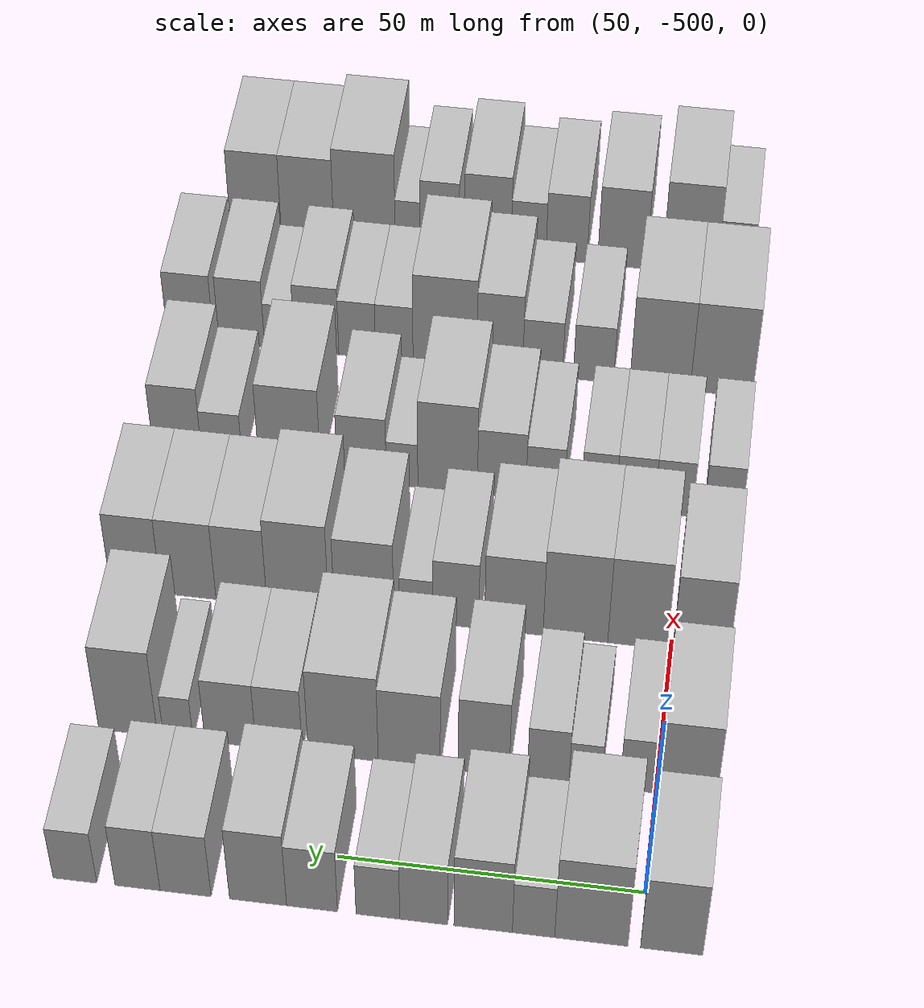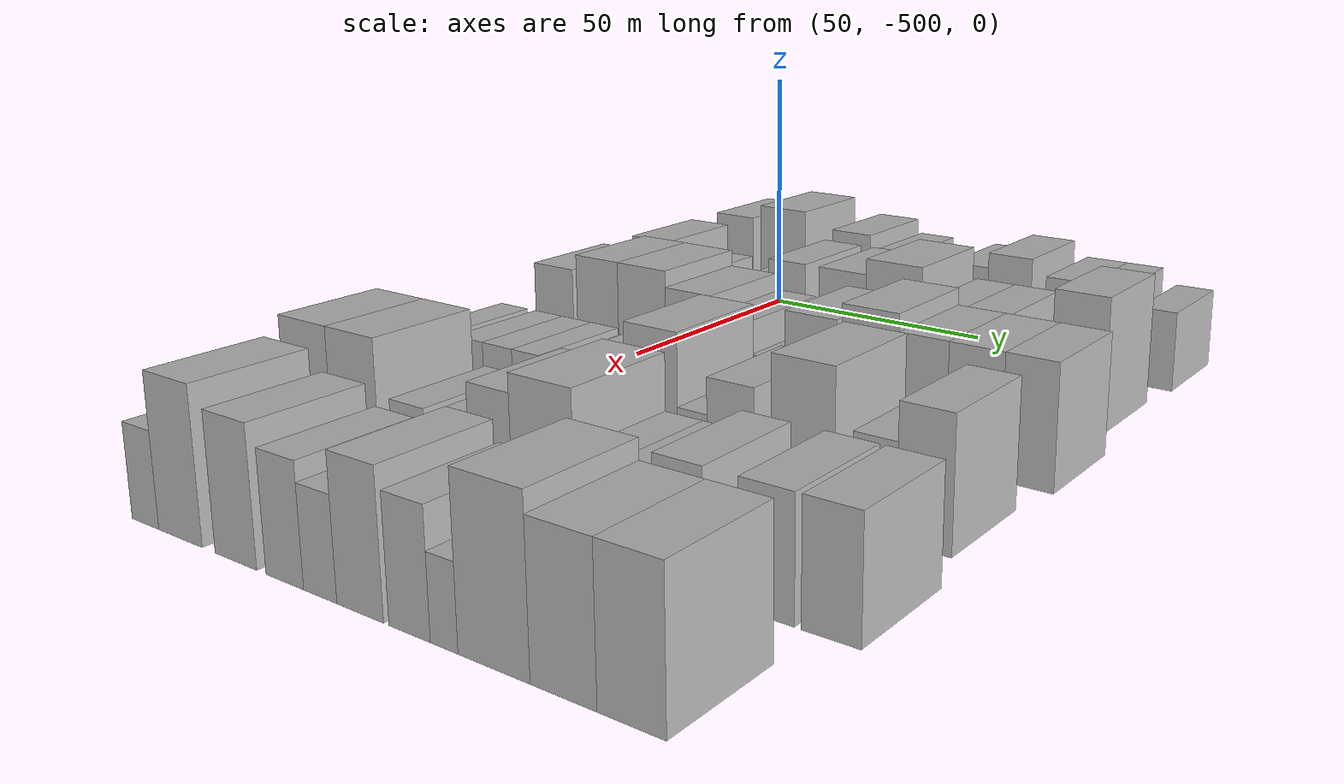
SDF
<sdf version="1.6">
 <world name="default">
  <model name="building_1">
   <static>1</static>
   <pose>50.0000 -505.0525 0 0.000000 0.000000 0.000000</pose>
   <link name="link">
    <pose>0 0 10.50 0 0 0</pose>
    <collision name="collision"><geometry><box><size>20.0000 9.8950 21.0000</size></box></geometry></collision>
    <visual name="visual">
     <cast_shadows>0</cast_shadows>
     <geometry><box><size>20.0000 9.8950 21.0000</size></box></geometry>
     <material>
      <script>
       <uri>model://HANNAS_wall/materials/scripts</uri>
       <uri>model://HANNAS_wall/materials/textures</uri>
       <name>vrc/HANNAS_wall</name>
      </script>
     </material>
    </visual>
   </link>
  </model>
  <model name="building_2">
   <static>1</static>
   <pose>50.0000 -492.2627 0 0.000000 0.000000 0.000000</pose>
   <link name="link">
    <pose>0 0 12.00 0 0 0</pose>
    <collision name="collision"><geometry><box><size>20.0000 11.6845 24.0000</size></box></geometry></collision>
    <visual name="visual">
     <cast_shadows>0</cast_shadows>
     <geometry><box><size>20.0000 11.6845 24.0000</size></box></geometry>
     <material>
      <script>
       <uri>model://HANNAS_wall/materials/scripts</uri>
       <uri>model://HANNAS_wall/materials/textures</uri>
       <name>vrc/HANNAS_wall</name>
      </script>
     </material>
    </visual>
   </link>
  </model>
  <model name="building_3">
   <static>1</static>
   <pose>50.0000 -483.0384 0 0.000000 0.000000 0.000000</pose>
   <link name="link">
    <pose>0 0 7.50 0 0 0</pose>
    <collision name="collision"><geometry><box><size>20.0000 6.7641 15.0000</size></box></geometry></collision>
    <visual name="visual">
     <cast_shadows>0</cast_shadows>
     <geometry><box><size>20.0000 6.7641 15.0000</size></box></geometry>
     <material>
      <script>
       <uri>model://HANNAS_wall/materials/scripts</uri>
       <uri>model://HANNAS_wall/materials/textures</uri>
       <name>vrc/HANNAS_wall</name>
      </script>
     </material>
    </visual>
   </link>
  </model>
  <model name="building_4">
   <static>1</static>
   <pose>50.0000 -474.9721 0 0.000000 0.000000 0.000000</pose>
   <link name="link">
    <pose>0 0 10.50 0 0 0</pose>
    <collision name="collision"><geometry><box><size>20.0000 9.3683 21.0000</size></box></geometry></collision>
    <visual name="visual">
     <cast_shadows>0</cast_shadows>
     <geometry><box><size>20.0000 9.3683 21.0000</size></box></geometry>
     <material>
      <script>
       <uri>model://HANNAS_wall/materials/scripts</uri>
       <uri>model://HANNAS_wall/materials/textures</uri>
       <name>vrc/HANNAS_wall</name>
      </script>
     </material>
    </visual>
   </link>
  </model>
  <model name="building_5">
   <static>1</static>
   <pose>50.0000 -465.4289 0 0.000000 0.000000 0.000000</pose>
   <link name="link">
    <pose>0 0 9.00 0 0 0</pose>
    <collision name="collision"><geometry><box><size>20.0000 7.7182 18.0000</size></box></geometry></collision>
    <visual name="visual">
     <cast_shadows>0</cast_shadows>
     <geometry><box><size>20.0000 7.7182 18.0000</size></box></geometry>
     <material>
      <script>
       <uri>model://HANNAS_wall/materials/scripts</uri>
       <uri>model://HANNAS_wall/materials/textures</uri>
       <name>vrc/HANNAS_wall</name>
      </script>
     </material>
    </visual>
   </link>
  </model>
  <model name="building_6">
   <static>1</static>
   <pose>50.0000 -458.0506 0 0.000000 0.000000 0.000000</pose>
   <link name="link">
    <pose>0 0 7.50 0 0 0</pose>
    <collision name="collision"><geometry><box><size>20.0000 7.0384 15.0000</size></box></geometry></collision>
    <visual name="visual">
     <cast_shadows>0</cast_shadows>
     <geometry><box><size>20.0000 7.0384 15.0000</size></box></geometry>
     <material>
      <script>
       <uri>model://HANNAS_wall/materials/scripts</uri>
       <uri>model://HANNAS_wall/materials/textures</uri>
       <name>vrc/HANNAS_wall</name>
      </script>
     </material>
    </visual>
   </link>
  </model>
  <model name="building_7">
   <static>1</static>
   <pose>50.0000 -447.4046 0 0.000000 0.000000 0.000000</pose>
   <link name="link">
    <pose>0 0 9.00 0 0 0</pose>
    <collision name="collision"><geometry><box><size>20.0000 8.2536 18.0000</size></box></geometry></collision>
    <visual name="visual">
     <cast_shadows>0</cast_shadows>
     <geometry><box><size>20.0000 8.2536 18.0000</size></box></geometry>
     <material>
      <script>
       <uri>model://HANNAS_wall/materials/scripts</uri>
       <uri>model://HANNAS_wall/materials/textures</uri>
       <name>vrc/HANNAS_wall</name>
      </script>
     </material>
    </visual>
   </link>
  </model>
  <model name="building_8">
   <static>1</static>
   <pose>50.0000 -438.6514 0 0.000000 0.000000 0.000000</pose>
   <link name="link">
    <pose>0 0 10.50 0 0 0</pose>
    <collision name="collision"><geometry><box><size>20.0000 9.2527 21.0000</size></box></geometry></collision>
    <visual name="visual">
     <cast_shadows>0</cast_shadows>
     <geometry><box><size>20.0000 9.2527 21.0000</size></box></geometry>
     <material>
      <script>
       <uri>model://HANNAS_wall/materials/scripts</uri>
       <uri>model://HANNAS_wall/materials/textures</uri>
       <name>vrc/HANNAS_wall</name>
      </script>
     </material>
    </visual>
   </link>
  </model>
  <model name="building_9">
   <static>1</static>
   <pose>50.0000 -426.8555 0 0.000000 0.000000 0.000000</pose>
   <link name="link">
    <pose>0 0 9.00 0 0 0</pose>
    <collision name="collision"><geometry><box><size>20.0000 8.3391 18.0000</size></box></geometry></collision>
    <visual name="visual">
     <cast_shadows>0</cast_shadows>
     <geometry><box><size>20.0000 8.3391 18.0000</size></box></geometry>
     <material>
      <script>
       <uri>model://HANNAS_wall/materials/scripts</uri>
       <uri>model://HANNAS_wall/materials/textures</uri>
       <name>vrc/HANNAS_wall</name>
      </script>
     </material>
    </visual>
   </link>
  </model>
  <model name="building_10">
   <static>1</static>
   <pose>50.0000 -419.0073 0 0.000000 0.000000 0.000000</pose>
   <link name="link">
    <pose>0 0 9.00 0 0 0</pose>
    <collision name="collision"><geometry><box><size>20.0000 7.3574 18.0000</size></box></geometry></collision>
    <visual name="visual">
     <cast_shadows>0</cast_shadows>
     <geometry><box><size>20.0000 7.3574 18.0000</size></box></geometry>
     <material>
      <script>
       <uri>model://HANNAS_wall/materials/scripts</uri>
       <uri>model://HANNAS_wall/materials/textures</uri>
       <name>vrc/HANNAS_wall</name>
      </script>
     </material>
    </visual>
   </link>
  </model>
  <model name="building_11">
   <static>1</static>
   <pose>50.0000 -408.7520 0 0.000000 0.000000 0.000000</pose>
   <link name="link">
    <pose>0 0 7.50 0 0 0</pose>
    <collision name="collision"><geometry><box><size>20.0000 7.1532 15.0000</size></box></geometry></collision>
    <visual name="visual">
     <cast_shadows>0</cast_shadows>
     <geometry><box><size>20.0000 7.1532 15.0000</size></box></geometry>
     <material>
      <script>
       <uri>model://HANNAS_wall/materials/scripts</uri>
       <uri>model://HANNAS_wall/materials/textures</uri>
       <name>vrc/HANNAS_wall</name>
      </script>
     </material>
    </visual>
   </link>
  </model>
  <model name="building_105">
   <static>1</static>
   <pose>79.0000 -505.1967 0 0.000000 0.000000 0.000000</pose>
   <link name="link">
    <pose>0 0 10.50 0 0 0</pose>
    <collision name="collision"><geometry><box><size>20.0000 9.6067 21.0000</size></box></geometry></collision>
    <visual name="visual">
     <cast_shadows>0</cast_shadows>
     <geometry><box><size>20.0000 9.6067 21.0000</size></box></geometry>
     <material>
      <script>
       <uri>model://HANNAS_wall/materials/scripts</uri>
       <uri>model://HANNAS_wall/materials/textures</uri>
       <name>vrc/HANNAS_wall</name>
      </script>
     </material>
    </visual>
   </link>
  </model>
  <model name="building_106">
   <static>1</static>
   <pose>79.0000 -497.1970 0 0.000000 0.000000 0.000000</pose>
   <link name="link">
    <pose>0 0 7.50 0 0 0</pose>
    <collision name="collision"><geometry><box><size>20.0000 6.3926 15.0000</size></box></geometry></collision>
    <visual name="visual">
     <cast_shadows>0</cast_shadows>
     <geometry><box><size>20.0000 6.3926 15.0000</size></box></geometry>
     <material>
      <script>
       <uri>model://HANNAS_wall/materials/scripts</uri>
       <uri>model://HANNAS_wall/materials/textures</uri>
       <name>vrc/HANNAS_wall</name>
      </script>
     </material>
    </visual>
   </link>
  </model>
  <model name="building_107">
   <static>1</static>
   <pose>79.0000 -488.2947 0 0.000000 0.000000 0.000000</pose>
   <link name="link">
    <pose>0 0 6.00 0 0 0</pose>
    <collision name="collision"><geometry><box><size>20.0000 5.4122 12.0000</size></box></geometry></collision>
    <visual name="visual">
     <cast_shadows>0</cast_shadows>
     <geometry><box><size>20.0000 5.4122 12.0000</size></box></geometry>
     <material>
      <script>
       <uri>model://HANNAS_wall/materials/scripts</uri>
       <uri>model://HANNAS_wall/materials/textures</uri>
       <name>vrc/HANNAS_wall</name>
      </script>
     </material>
    </visual>
   </link>
  </model>
  <model name="building_108">
   <static>1</static>
   <pose>79.0000 -482.1387 0 0.000000 0.000000 0.000000</pose>
   <link name="link">
    <pose>0 0 7.50 0 0 0</pose>
    <collision name="collision"><geometry><box><size>20.0000 6.8997 15.0000</size></box></geometry></collision>
    <visual name="visual">
     <cast_shadows>0</cast_shadows>
     <geometry><box><size>20.0000 6.8997 15.0000</size></box></geometry>
     <material>
      <script>
       <uri>model://HANNAS_wall/materials/scripts</uri>
       <uri>model://HANNAS_wall/materials/textures</uri>
       <name>vrc/HANNAS_wall</name>
      </script>
     </material>
    </visual>
   </link>
  </model>
  <model name="building_109">
   <static>1</static>
   <pose>79.0000 -471.4327 0 0.000000 0.000000 0.000000</pose>
   <link name="link">
    <pose>0 0 10.50 0 0 0</pose>
    <collision name="collision"><geometry><box><size>20.0000 8.5123 21.0000</size></box></geometry></collision>
    <visual name="visual">
     <cast_shadows>0</cast_shadows>
     <geometry><box><size>20.0000 8.5123 21.0000</size></box></geometry>
     <material>
      <script>
       <uri>model://HANNAS_wall/materials/scripts</uri>
       <uri>model://HANNAS_wall/materials/textures</uri>
       <name>vrc/HANNAS_wall</name>
      </script>
     </material>
    </visual>
   </link>
  </model>
  <model name="building_110">
   <static>1</static>
   <pose>79.0000 -458.9937 0 0.000000 0.000000 0.000000</pose>
   <link name="link">
    <pose>0 0 10.50 0 0 0</pose>
    <collision name="collision"><geometry><box><size>20.0000 10.3657 21.0000</size></box></geometry></collision>
    <visual name="visual">
     <cast_shadows>0</cast_shadows>
     <geometry><box><size>20.0000 10.3657 21.0000</size></box></geometry>
     <material>
      <script>
       <uri>model://HANNAS_wall/materials/scripts</uri>
       <uri>model://HANNAS_wall/materials/textures</uri>
       <name>vrc/HANNAS_wall</name>
      </script>
     </material>
    </visual>
   </link>
  </model>
  <model name="building_111">
   <static>1</static>
   <pose>79.0000 -447.9383 0 0.000000 0.000000 0.000000</pose>
   <link name="link">
    <pose>0 0 12.00 0 0 0</pose>
    <collision name="collision"><geometry><box><size>20.0000 11.7453 24.0000</size></box></geometry></collision>
    <visual name="visual">
     <cast_shadows>0</cast_shadows>
     <geometry><box><size>20.0000 11.7453 24.0000</size></box></geometry>
     <material>
      <script>
       <uri>model://HANNAS_wall/materials/scripts</uri>
       <uri>model://HANNAS_wall/materials/textures</uri>
       <name>vrc/HANNAS_wall</name>
      </script>
     </material>
    </visual>
   </link>
  </model>
  <model name="building_112">
   <static>1</static>
   <pose>79.0000 -437.1507 0 0.000000 0.000000 0.000000</pose>
   <link name="link">
    <pose>0 0 9.00 0 0 0</pose>
    <collision name="collision"><geometry><box><size>20.0000 7.8299 18.0000</size></box></geometry></collision>
    <visual name="visual">
     <cast_shadows>0</cast_shadows>
     <geometry><box><size>20.0000 7.8299 18.0000</size></box></geometry>
     <material>
      <script>
       <uri>model://HANNAS_wall/materials/scripts</uri>
       <uri>model://HANNAS_wall/materials/textures</uri>
       <name>vrc/HANNAS_wall</name>
      </script>
     </material>
    </visual>
   </link>
  </model>
  <model name="building_113">
   <static>1</static>
   <pose>79.0000 -428.9253 0 0.000000 0.000000 0.000000</pose>
   <link name="link">
    <pose>0 0 9.00 0 0 0</pose>
    <collision name="collision"><geometry><box><size>20.0000 8.6209 18.0000</size></box></geometry></collision>
    <visual name="visual">
     <cast_shadows>0</cast_shadows>
     <geometry><box><size>20.0000 8.6209 18.0000</size></box></geometry>
     <material>
      <script>
       <uri>model://HANNAS_wall/materials/scripts</uri>
       <uri>model://HANNAS_wall/materials/textures</uri>
       <name>vrc/HANNAS_wall</name>
      </script>
     </material>
    </visual>
   </link>
  </model>
  <model name="building_114">
   <static>1</static>
   <pose>79.0000 -420.0906 0 0.000000 0.000000 0.000000</pose>
   <link name="link">
    <pose>0 0 6.00 0 0 0</pose>
    <collision name="collision"><geometry><box><size>20.0000 5.0485 12.0000</size></box></geometry></collision>
    <visual name="visual">
     <cast_shadows>0</cast_shadows>
     <geometry><box><size>20.0000 5.0485 12.0000</size></box></geometry>
     <material>
      <script>
       <uri>model://HANNAS_wall/materials/scripts</uri>
       <uri>model://HANNAS_wall/materials/textures</uri>
       <name>vrc/HANNAS_wall</name>
      </script>
     </material>
    </visual>
   </link>
  </model>
  <model name="building_115">
   <static>1</static>
   <pose>79.0000 -411.5672 0 0.000000 0.000000 0.000000</pose>
   <link name="link">
    <pose>0 0 12.00 0 0 0</pose>
    <collision name="collision"><geometry><box><size>20.0000 9.9984 24.0000</size></box></geometry></collision>
    <visual name="visual">
     <cast_shadows>0</cast_shadows>
     <geometry><box><size>20.0000 9.9984 24.0000</size></box></geometry>
     <material>
      <script>
       <uri>model://HANNAS_wall/materials/scripts</uri>
       <uri>model://HANNAS_wall/materials/textures</uri>
       <name>vrc/HANNAS_wall</name>
      </script>
     </material>
    </visual>
   </link>
  </model>
  <model name="building_223">
   <static>1</static>
   <pose>108.0000 -505.1646 0 0.000000 0.000000 0.000000</pose>
   <link name="link">
    <pose>0 0 10.50 0 0 0</pose>
    <collision name="collision"><geometry><box><size>20.0000 9.6707 21.0000</size></box></geometry></collision>
    <visual name="visual">
     <cast_shadows>0</cast_shadows>
     <geometry><box><size>20.0000 9.6707 21.0000</size></box></geometry>
     <material>
      <script>
       <uri>model://HANNAS_wall/materials/scripts</uri>
       <uri>model://HANNAS_wall/materials/textures</uri>
       <name>vrc/HANNAS_wall</name>
      </script>
     </material>
    </visual>
   </link>
  </model>
  <model name="building_224">
   <static>1</static>
   <pose>108.0000 -494.2528 0 0.000000 0.000000 0.000000</pose>
   <link name="link">
    <pose>0 0 12.00 0 0 0</pose>
    <collision name="collision"><geometry><box><size>20.0000 10.1529 24.0000</size></box></geometry></collision>
    <visual name="visual">
     <cast_shadows>0</cast_shadows>
     <geometry><box><size>20.0000 10.1529 24.0000</size></box></geometry>
     <material>
      <script>
       <uri>model://HANNAS_wall/materials/scripts</uri>
       <uri>model://HANNAS_wall/materials/textures</uri>
       <name>vrc/HANNAS_wall</name>
      </script>
     </material>
    </visual>
   </link>
  </model>
  <model name="building_225">
   <static>1</static>
   <pose>108.0000 -483.6098 0 0.000000 0.000000 0.000000</pose>
   <link name="link">
    <pose>0 0 12.00 0 0 0</pose>
    <collision name="collision"><geometry><box><size>20.0000 11.1330 24.0000</size></box></geometry></collision>
    <visual name="visual">
     <cast_shadows>0</cast_shadows>
     <geometry><box><size>20.0000 11.1330 24.0000</size></box></geometry>
     <material>
      <script>
       <uri>model://HANNAS_wall/materials/scripts</uri>
       <uri>model://HANNAS_wall/materials/textures</uri>
       <name>vrc/HANNAS_wall</name>
      </script>
     </material>
    </visual>
   </link>
  </model>
  <model name="building_226">
   <static>1</static>
   <pose>108.0000 -472.9923 0 0.000000 0.000000 0.000000</pose>
   <link name="link">
    <pose>0 0 10.50 0 0 0</pose>
    <collision name="collision"><geometry><box><size>20.0000 10.1021 21.0000</size></box></geometry></collision>
    <visual name="visual">
     <cast_shadows>0</cast_shadows>
     <geometry><box><size>20.0000 10.1021 21.0000</size></box></geometry>
     <material>
      <script>
       <uri>model://HANNAS_wall/materials/scripts</uri>
       <uri>model://HANNAS_wall/materials/textures</uri>
       <name>vrc/HANNAS_wall</name>
      </script>
     </material>
    </visual>
   </link>
  </model>
  <model name="building_227">
   <static>1</static>
   <pose>108.0000 -462.9695 0 0.000000 0.000000 0.000000</pose>
   <link name="link">
    <pose>0 0 9.00 0 0 0</pose>
    <collision name="collision"><geometry><box><size>20.0000 7.9435 18.0000</size></box></geometry></collision>
    <visual name="visual">
     <cast_shadows>0</cast_shadows>
     <geometry><box><size>20.0000 7.9435 18.0000</size></box></geometry>
     <material>
      <script>
       <uri>model://HANNAS_wall/materials/scripts</uri>
       <uri>model://HANNAS_wall/materials/textures</uri>
       <name>vrc/HANNAS_wall</name>
      </script>
     </material>
    </visual>
   </link>
  </model>
  <model name="building_228">
   <static>1</static>
   <pose>108.0000 -456.1054 0 0.000000 0.000000 0.000000</pose>
   <link name="link">
    <pose>0 0 6.00 0 0 0</pose>
    <collision name="collision"><geometry><box><size>20.0000 5.7846 12.0000</size></box></geometry></collision>
    <visual name="visual">
     <cast_shadows>0</cast_shadows>
     <geometry><box><size>20.0000 5.7846 12.0000</size></box></geometry>
     <material>
      <script>
       <uri>model://HANNAS_wall/materials/scripts</uri>
       <uri>model://HANNAS_wall/materials/textures</uri>
       <name>vrc/HANNAS_wall</name>
      </script>
     </material>
    </visual>
   </link>
  </model>
  <model name="building_229">
   <static>1</static>
   <pose>108.0000 -447.0440 0 0.000000 0.000000 0.000000</pose>
   <link name="link">
    <pose>0 0 10.50 0 0 0</pose>
    <collision name="collision"><geometry><box><size>20.0000 10.3381 21.0000</size></box></geometry></collision>
    <visual name="visual">
     <cast_shadows>0</cast_shadows>
     <geometry><box><size>20.0000 10.3381 21.0000</size></box></geometry>
     <material>
      <script>
       <uri>model://HANNAS_wall/materials/scripts</uri>
       <uri>model://HANNAS_wall/materials/textures</uri>
       <name>vrc/HANNAS_wall</name>
      </script>
     </material>
    </visual>
   </link>
  </model>
  <model name="building_230">
   <static>1</static>
   <pose>108.0000 -435.4775 0 0.000000 0.000000 0.000000</pose>
   <link name="link">
    <pose>0 0 12.00 0 0 0</pose>
    <collision name="collision"><geometry><box><size>20.0000 10.7949 24.0000</size></box></geometry></collision>
    <visual name="visual">
     <cast_shadows>0</cast_shadows>
     <geometry><box><size>20.0000 10.7949 24.0000</size></box></geometry>
     <material>
      <script>
       <uri>model://HANNAS_wall/materials/scripts</uri>
       <uri>model://HANNAS_wall/materials/textures</uri>
       <name>vrc/HANNAS_wall</name>
      </script>
     </material>
    </visual>
   </link>
  </model>
  <model name="building_231">
   <static>1</static>
   <pose>108.0000 -425.6089 0 0.000000 0.000000 0.000000</pose>
   <link name="link">
    <pose>0 0 10.50 0 0 0</pose>
    <collision name="collision"><geometry><box><size>20.0000 8.9423 21.0000</size></box></geometry></collision>
    <visual name="visual">
     <cast_shadows>0</cast_shadows>
     <geometry><box><size>20.0000 8.9423 21.0000</size></box></geometry>
     <material>
      <script>
       <uri>model://HANNAS_wall/materials/scripts</uri>
       <uri>model://HANNAS_wall/materials/textures</uri>
       <name>vrc/HANNAS_wall</name>
      </script>
     </material>
    </visual>
   </link>
  </model>
  <model name="building_232">
   <static>1</static>
   <pose>108.0000 -416.3095 0 0.000000 0.000000 0.000000</pose>
   <link name="link">
    <pose>0 0 10.50 0 0 0</pose>
    <collision name="collision"><geometry><box><size>20.0000 9.6566 21.0000</size></box></geometry></collision>
    <visual name="visual">
     <cast_shadows>0</cast_shadows>
     <geometry><box><size>20.0000 9.6566 21.0000</size></box></geometry>
     <material>
      <script>
       <uri>model://HANNAS_wall/materials/scripts</uri>
       <uri>model://HANNAS_wall/materials/textures</uri>
       <name>vrc/HANNAS_wall</name>
      </script>
     </material>
    </visual>
   </link>
  </model>
  <model name="building_233">
   <static>1</static>
   <pose>108.0000 -407.0207 0 0.000000 0.000000 0.000000</pose>
   <link name="link">
    <pose>0 0 10.50 0 0 0</pose>
    <collision name="collision"><geometry><box><size>20.0000 8.9209 21.0000</size></box></geometry></collision>
    <visual name="visual">
     <cast_shadows>0</cast_shadows>
     <geometry><box><size>20.0000 8.9209 21.0000</size></box></geometry>
     <material>
      <script>
       <uri>model://HANNAS_wall/materials/scripts</uri>
       <uri>model://HANNAS_wall/materials/textures</uri>
       <name>vrc/HANNAS_wall</name>
      </script>
     </material>
    </visual>
   </link>
  </model>
  <model name="building_344">
   <static>1</static>
   <pose>137.0000 -506.6699 0 0.000000 0.000000 0.000000</pose>
   <link name="link">
    <pose>0 0 7.50 0 0 0</pose>
    <collision name="collision"><geometry><box><size>20.0000 6.6601 15.0000</size></box></geometry></collision>
    <visual name="visual">
     <cast_shadows>0</cast_shadows>
     <geometry><box><size>20.0000 6.6601 15.0000</size></box></geometry>
     <material>
      <script>
       <uri>model://HANNAS_wall/materials/scripts</uri>
       <uri>model://HANNAS_wall/materials/textures</uri>
       <name>vrc/HANNAS_wall</name>
      </script>
     </material>
    </visual>
   </link>
  </model>
  <model name="building_345">
   <static>1</static>
   <pose>137.0000 -497.9796 0 0.000000 0.000000 0.000000</pose>
   <link name="link">
    <pose>0 0 7.50 0 0 0</pose>
    <collision name="collision"><geometry><box><size>20.0000 6.7205 15.0000</size></box></geometry></collision>
    <visual name="visual">
     <cast_shadows>0</cast_shadows>
     <geometry><box><size>20.0000 6.7205 15.0000</size></box></geometry>
     <material>
      <script>
       <uri>model://HANNAS_wall/materials/scripts</uri>
       <uri>model://HANNAS_wall/materials/textures</uri>
       <name>vrc/HANNAS_wall</name>
      </script>
     </material>
    </visual>
   </link>
  </model>
  <model name="building_346">
   <static>1</static>
   <pose>137.0000 -491.1611 0 0.000000 0.000000 0.000000</pose>
   <link name="link">
    <pose>0 0 7.50 0 0 0</pose>
    <collision name="collision"><geometry><box><size>20.0000 6.9165 15.0000</size></box></geometry></collision>
    <visual name="visual">
     <cast_shadows>0</cast_shadows>
     <geometry><box><size>20.0000 6.9165 15.0000</size></box></geometry>
     <material>
      <script>
       <uri>model://HANNAS_wall/materials/scripts</uri>
       <uri>model://HANNAS_wall/materials/textures</uri>
       <name>vrc/HANNAS_wall</name>
      </script>
     </material>
    </visual>
   </link>
  </model>
  <model name="building_347">
   <static>1</static>
   <pose>137.0000 -484.6311 0 0.000000 0.000000 0.000000</pose>
   <link name="link">
    <pose>0 0 7.50 0 0 0</pose>
    <collision name="collision"><geometry><box><size>20.0000 6.1436 15.0000</size></box></geometry></collision>
    <visual name="visual">
     <cast_shadows>0</cast_shadows>
     <geometry><box><size>20.0000 6.1436 15.0000</size></box></geometry>
     <material>
      <script>
       <uri>model://HANNAS_wall/materials/scripts</uri>
       <uri>model://HANNAS_wall/materials/textures</uri>
       <name>vrc/HANNAS_wall</name>
      </script>
     </material>
    </visual>
   </link>
  </model>
  <model name="building_348">
   <static>1</static>
   <pose>137.0000 -475.1274 0 0.000000 0.000000 0.000000</pose>
   <link name="link">
    <pose>0 0 7.50 0 0 0</pose>
    <collision name="collision"><geometry><box><size>20.0000 6.8638 15.0000</size></box></geometry></collision>
    <visual name="visual">
     <cast_shadows>0</cast_shadows>
     <geometry><box><size>20.0000 6.8638 15.0000</size></box></geometry>
     <material>
      <script>
       <uri>model://HANNAS_wall/materials/scripts</uri>
       <uri>model://HANNAS_wall/materials/textures</uri>
       <name>vrc/HANNAS_wall</name>
      </script>
     </material>
    </visual>
   </link>
  </model>
  <model name="building_349">
   <static>1</static>
   <pose>137.0000 -467.3618 0 0.000000 0.000000 0.000000</pose>
   <link name="link">
    <pose>0 0 9.00 0 0 0</pose>
    <collision name="collision"><geometry><box><size>20.0000 8.6674 18.0000</size></box></geometry></collision>
    <visual name="visual">
     <cast_shadows>0</cast_shadows>
     <geometry><box><size>20.0000 8.6674 18.0000</size></box></geometry>
     <material>
      <script>
       <uri>model://HANNAS_wall/materials/scripts</uri>
       <uri>model://HANNAS_wall/materials/textures</uri>
       <name>vrc/HANNAS_wall</name>
      </script>
     </material>
    </visual>
   </link>
  </model>
  <model name="building_350">
   <static>1</static>
   <pose>137.0000 -457.6876 0 0.000000 0.000000 0.000000</pose>
   <link name="link">
    <pose>0 0 12.00 0 0 0</pose>
    <collision name="collision"><geometry><box><size>20.0000 10.6808 24.0000</size></box></geometry></collision>
    <visual name="visual">
     <cast_shadows>0</cast_shadows>
     <geometry><box><size>20.0000 10.6808 24.0000</size></box></geometry>
     <material>
      <script>
       <uri>model://HANNAS_wall/materials/scripts</uri>
       <uri>model://HANNAS_wall/materials/textures</uri>
       <name>vrc/HANNAS_wall</name>
      </script>
     </material>
    </visual>
   </link>
  </model>
  <model name="building_351">
   <static>1</static>
   <pose>137.0000 -449.5104 0 0.000000 0.000000 0.000000</pose>
   <link name="link">
    <pose>0 0 6.00 0 0 0</pose>
    <collision name="collision"><geometry><box><size>20.0000 5.6736 12.0000</size></box></geometry></collision>
    <visual name="visual">
     <cast_shadows>0</cast_shadows>
     <geometry><box><size>20.0000 5.6736 12.0000</size></box></geometry>
     <material>
      <script>
       <uri>model://HANNAS_wall/materials/scripts</uri>
       <uri>model://HANNAS_wall/materials/textures</uri>
       <name>vrc/HANNAS_wall</name>
      </script>
     </material>
    </visual>
   </link>
  </model>
  <model name="building_352">
   <static>1</static>
   <pose>137.0000 -442.2562 0 0.000000 0.000000 0.000000</pose>
   <link name="link">
    <pose>0 0 9.00 0 0 0</pose>
    <collision name="collision"><geometry><box><size>20.0000 8.8347 18.0000</size></box></geometry></collision>
    <visual name="visual">
     <cast_shadows>0</cast_shadows>
     <geometry><box><size>20.0000 8.8347 18.0000</size></box></geometry>
     <material>
      <script>
       <uri>model://HANNAS_wall/materials/scripts</uri>
       <uri>model://HANNAS_wall/materials/textures</uri>
       <name>vrc/HANNAS_wall</name>
      </script>
     </material>
    </visual>
   </link>
  </model>
  <model name="building_353">
   <static>1</static>
   <pose>137.0000 -429.2670 0 0.000000 0.000000 0.000000</pose>
   <link name="link">
    <pose>0 0 12.00 0 0 0</pose>
    <collision name="collision"><geometry><box><size>20.0000 11.1438 24.0000</size></box></geometry></collision>
    <visual name="visual">
     <cast_shadows>0</cast_shadows>
     <geometry><box><size>20.0000 11.1438 24.0000</size></box></geometry>
     <material>
      <script>
       <uri>model://HANNAS_wall/materials/scripts</uri>
       <uri>model://HANNAS_wall/materials/textures</uri>
       <name>vrc/HANNAS_wall</name>
      </script>
     </material>
    </visual>
   </link>
  </model>
  <model name="building_354">
   <static>1</static>
   <pose>137.0000 -417.0237 0 0.000000 0.000000 0.000000</pose>
   <link name="link">
    <pose>0 0 7.50 0 0 0</pose>
    <collision name="collision"><geometry><box><size>20.0000 7.3427 15.0000</size></box></geometry></collision>
    <visual name="visual">
     <cast_shadows>0</cast_shadows>
     <geometry><box><size>20.0000 7.3427 15.0000</size></box></geometry>
     <material>
      <script>
       <uri>model://HANNAS_wall/materials/scripts</uri>
       <uri>model://HANNAS_wall/materials/textures</uri>
       <name>vrc/HANNAS_wall</name>
      </script>
     </material>
    </visual>
   </link>
  </model>
  <model name="building_355">
   <static>1</static>
   <pose>137.0000 -408.9553 0 0.000000 0.000000 0.000000</pose>
   <link name="link">
    <pose>0 0 10.50 0 0 0</pose>
    <collision name="collision"><geometry><box><size>20.0000 8.7940 21.0000</size></box></geometry></collision>
    <visual name="visual">
     <cast_shadows>0</cast_shadows>
     <geometry><box><size>20.0000 8.7940 21.0000</size></box></geometry>
     <material>
      <script>
       <uri>model://HANNAS_wall/materials/scripts</uri>
       <uri>model://HANNAS_wall/materials/textures</uri>
       <name>vrc/HANNAS_wall</name>
      </script>
     </material>
    </visual>
   </link>
  </model>
  <model name="building_462">
   <static>1</static>
   <pose>166.0000 -504.3137 0 0.000000 0.000000 0.000000</pose>
   <link name="link">
    <pose>0 0 12.00 0 0 0</pose>
    <collision name="collision"><geometry><box><size>20.0000 11.3727 24.0000</size></box></geometry></collision>
    <visual name="visual">
     <cast_shadows>0</cast_shadows>
     <geometry><box><size>20.0000 11.3727 24.0000</size></box></geometry>
     <material>
      <script>
       <uri>model://HANNAS_wall/materials/scripts</uri>
       <uri>model://HANNAS_wall/materials/textures</uri>
       <name>vrc/HANNAS_wall</name>
      </script>
     </material>
    </visual>
   </link>
  </model>
  <model name="building_463">
   <static>1</static>
   <pose>166.0000 -493.0781 0 0.000000 0.000000 0.000000</pose>
   <link name="link">
    <pose>0 0 12.00 0 0 0</pose>
    <collision name="collision"><geometry><box><size>20.0000 11.0985 24.0000</size></box></geometry></collision>
    <visual name="visual">
     <cast_shadows>0</cast_shadows>
     <geometry><box><size>20.0000 11.0985 24.0000</size></box></geometry>
     <material>
      <script>
       <uri>model://HANNAS_wall/materials/scripts</uri>
       <uri>model://HANNAS_wall/materials/textures</uri>
       <name>vrc/HANNAS_wall</name>
      </script>
     </material>
    </visual>
   </link>
  </model>
  <model name="building_464">
   <static>1</static>
   <pose>166.0000 -480.8154 0 0.000000 0.000000 0.000000</pose>
   <link name="link">
    <pose>0 0 7.50 0 0 0</pose>
    <collision name="collision"><geometry><box><size>20.0000 7.4268 15.0000</size></box></geometry></collision>
    <visual name="visual">
     <cast_shadows>0</cast_shadows>
     <geometry><box><size>20.0000 7.4268 15.0000</size></box></geometry>
     <material>
      <script>
       <uri>model://HANNAS_wall/materials/scripts</uri>
       <uri>model://HANNAS_wall/materials/textures</uri>
       <name>vrc/HANNAS_wall</name>
      </script>
     </material>
    </visual>
   </link>
  </model>
  <model name="building_465">
   <static>1</static>
   <pose>166.0000 -471.4247 0 0.000000 0.000000 0.000000</pose>
   <link name="link">
    <pose>0 0 7.50 0 0 0</pose>
    <collision name="collision"><geometry><box><size>20.0000 7.3546 15.0000</size></box></geometry></collision>
    <visual name="visual">
     <cast_shadows>0</cast_shadows>
     <geometry><box><size>20.0000 7.3546 15.0000</size></box></geometry>
     <material>
      <script>
       <uri>model://HANNAS_wall/materials/scripts</uri>
       <uri>model://HANNAS_wall/materials/textures</uri>
       <name>vrc/HANNAS_wall</name>
      </script>
     </material>
    </visual>
   </link>
  </model>
  <model name="building_466">
   <static>1</static>
   <pose>166.0000 -463.5087 0 0.000000 0.000000 0.000000</pose>
   <link name="link">
    <pose>0 0 10.50 0 0 0</pose>
    <collision name="collision"><geometry><box><size>20.0000 8.4776 21.0000</size></box></geometry></collision>
    <visual name="visual">
     <cast_shadows>0</cast_shadows>
     <geometry><box><size>20.0000 8.4776 21.0000</size></box></geometry>
     <material>
      <script>
       <uri>model://HANNAS_wall/materials/scripts</uri>
       <uri>model://HANNAS_wall/materials/textures</uri>
       <name>vrc/HANNAS_wall</name>
      </script>
     </material>
    </visual>
   </link>
  </model>
  <model name="building_467">
   <static>1</static>
   <pose>166.0000 -453.3325 0 0.000000 0.000000 0.000000</pose>
   <link name="link">
    <pose>0 0 12.00 0 0 0</pose>
    <collision name="collision"><geometry><box><size>20.0000 11.8747 24.0000</size></box></geometry></collision>
    <visual name="visual">
     <cast_shadows>0</cast_shadows>
     <geometry><box><size>20.0000 11.8747 24.0000</size></box></geometry>
     <material>
      <script>
       <uri>model://HANNAS_wall/materials/scripts</uri>
       <uri>model://HANNAS_wall/materials/textures</uri>
       <name>vrc/HANNAS_wall</name>
      </script>
     </material>
    </visual>
   </link>
  </model>
  <model name="building_468">
   <static>1</static>
   <pose>166.0000 -443.9005 0 0.000000 0.000000 0.000000</pose>
   <link name="link">
    <pose>0 0 7.50 0 0 0</pose>
    <collision name="collision"><geometry><box><size>20.0000 6.9893 15.0000</size></box></geometry></collision>
    <visual name="visual">
     <cast_shadows>0</cast_shadows>
     <geometry><box><size>20.0000 6.9893 15.0000</size></box></geometry>
     <material>
      <script>
       <uri>model://HANNAS_wall/materials/scripts</uri>
       <uri>model://HANNAS_wall/materials/textures</uri>
       <name>vrc/HANNAS_wall</name>
      </script>
     </material>
    </visual>
   </link>
  </model>
  <model name="building_469">
   <static>1</static>
   <pose>166.0000 -436.9737 0 0.000000 0.000000 0.000000</pose>
   <link name="link">
    <pose>0 0 7.50 0 0 0</pose>
    <collision name="collision"><geometry><box><size>20.0000 6.8643 15.0000</size></box></geometry></collision>
    <visual name="visual">
     <cast_shadows>0</cast_shadows>
     <geometry><box><size>20.0000 6.8643 15.0000</size></box></geometry>
     <material>
      <script>
       <uri>model://HANNAS_wall/materials/scripts</uri>
       <uri>model://HANNAS_wall/materials/textures</uri>
       <name>vrc/HANNAS_wall</name>
      </script>
     </material>
    </visual>
   </link>
  </model>
  <model name="building_470">
   <static>1</static>
   <pose>166.0000 -429.3970 0 0.000000 0.000000 0.000000</pose>
   <link name="link">
    <pose>0 0 9.00 0 0 0</pose>
    <collision name="collision"><geometry><box><size>20.0000 8.2891 18.0000</size></box></geometry></collision>
    <visual name="visual">
     <cast_shadows>0</cast_shadows>
     <geometry><box><size>20.0000 8.2891 18.0000</size></box></geometry>
     <material>
      <script>
       <uri>model://HANNAS_wall/materials/scripts</uri>
       <uri>model://HANNAS_wall/materials/textures</uri>
       <name>vrc/HANNAS_wall</name>
      </script>
     </material>
    </visual>
   </link>
  </model>
  <model name="building_471">
   <static>1</static>
   <pose>166.0000 -422.4306 0 0.000000 0.000000 0.000000</pose>
   <link name="link">
    <pose>0 0 6.00 0 0 0</pose>
    <collision name="collision"><geometry><box><size>20.0000 5.6436 12.0000</size></box></geometry></collision>
    <visual name="visual">
     <cast_shadows>0</cast_shadows>
     <geometry><box><size>20.0000 5.6436 12.0000</size></box></geometry>
     <material>
      <script>
       <uri>model://HANNAS_wall/materials/scripts</uri>
       <uri>model://HANNAS_wall/materials/textures</uri>
       <name>vrc/HANNAS_wall</name>
      </script>
     </material>
    </visual>
   </link>
  </model>
  <model name="building_472">
   <static>1</static>
   <pose>166.0000 -415.3194 0 0.000000 0.000000 0.000000</pose>
   <link name="link">
    <pose>0 0 9.00 0 0 0</pose>
    <collision name="collision"><geometry><box><size>20.0000 8.5790 18.0000</size></box></geometry></collision>
    <visual name="visual">
     <cast_shadows>0</cast_shadows>
     <geometry><box><size>20.0000 8.5790 18.0000</size></box></geometry>
     <material>
      <script>
       <uri>model://HANNAS_wall/materials/scripts</uri>
       <uri>model://HANNAS_wall/materials/textures</uri>
       <name>vrc/HANNAS_wall</name>
      </script>
     </material>
    </visual>
   </link>
  </model>
  <model name="building_473">
   <static>1</static>
   <pose>166.0000 -405.6651 0 0.000000 0.000000 0.000000</pose>
   <link name="link">
    <pose>0 0 9.00 0 0 0</pose>
    <collision name="collision"><geometry><box><size>20.0000 8.7296 18.0000</size></box></geometry></collision>
    <visual name="visual">
     <cast_shadows>0</cast_shadows>
     <geometry><box><size>20.0000 8.7296 18.0000</size></box></geometry>
     <material>
      <script>
       <uri>model://HANNAS_wall/materials/scripts</uri>
       <uri>model://HANNAS_wall/materials/textures</uri>
       <name>vrc/HANNAS_wall</name>
      </script>
     </material>
    </visual>
   </link>
  </model>
  <model name="building_578">
   <static>1</static>
   <pose>195.0000 -504.6644 0 0.000000 0.000000 0.000000</pose>
   <link name="link">
    <pose>0 0 7.50 0 0 0</pose>
    <collision name="collision"><geometry><box><size>20.0000 6.6713 15.0000</size></box></geometry></collision>
    <visual name="visual">
     <cast_shadows>0</cast_shadows>
     <geometry><box><size>20.0000 6.6713 15.0000</size></box></geometry>
     <material>
      <script>
       <uri>model://HANNAS_wall/materials/scripts</uri>
       <uri>model://HANNAS_wall/materials/textures</uri>
       <name>vrc/HANNAS_wall</name>
      </script>
     </material>
    </visual>
   </link>
  </model>
  <model name="building_579">
   <static>1</static>
   <pose>195.0000 -496.1319 0 0.000000 0.000000 0.000000</pose>
   <link name="link">
    <pose>0 0 12.00 0 0 0</pose>
    <collision name="collision"><geometry><box><size>20.0000 10.3936 24.0000</size></box></geometry></collision>
    <visual name="visual">
     <cast_shadows>0</cast_shadows>
     <geometry><box><size>20.0000 10.3936 24.0000</size></box></geometry>
     <material>
      <script>
       <uri>model://HANNAS_wall/materials/scripts</uri>
       <uri>model://HANNAS_wall/materials/textures</uri>
       <name>vrc/HANNAS_wall</name>
      </script>
     </material>
    </visual>
   </link>
  </model>
  <model name="building_580">
   <static>1</static>
   <pose>195.0000 -483.2958 0 0.000000 0.000000 0.000000</pose>
   <link name="link">
    <pose>0 0 10.50 0 0 0</pose>
    <collision name="collision"><geometry><box><size>20.0000 9.2787 21.0000</size></box></geometry></collision>
    <visual name="visual">
     <cast_shadows>0</cast_shadows>
     <geometry><box><size>20.0000 9.2787 21.0000</size></box></geometry>
     <material>
      <script>
       <uri>model://HANNAS_wall/materials/scripts</uri>
       <uri>model://HANNAS_wall/materials/textures</uri>
       <name>vrc/HANNAS_wall</name>
      </script>
     </material>
    </visual>
   </link>
  </model>
  <model name="building_581">
   <static>1</static>
   <pose>195.0000 -472.7189 0 0.000000 0.000000 0.000000</pose>
   <link name="link">
    <pose>0 0 9.00 0 0 0</pose>
    <collision name="collision"><geometry><box><size>20.0000 7.8751 18.0000</size></box></geometry></collision>
    <visual name="visual">
     <cast_shadows>0</cast_shadows>
     <geometry><box><size>20.0000 7.8751 18.0000</size></box></geometry>
     <material>
      <script>
       <uri>model://HANNAS_wall/materials/scripts</uri>
       <uri>model://HANNAS_wall/materials/textures</uri>
       <name>vrc/HANNAS_wall</name>
      </script>
     </material>
    </visual>
   </link>
  </model>
  <model name="building_582">
   <static>1</static>
   <pose>195.0000 -465.4420 0 0.000000 0.000000 0.000000</pose>
   <link name="link">
    <pose>0 0 7.50 0 0 0</pose>
    <collision name="collision"><geometry><box><size>20.0000 6.6787 15.0000</size></box></geometry></collision>
    <visual name="visual">
     <cast_shadows>0</cast_shadows>
     <geometry><box><size>20.0000 6.6787 15.0000</size></box></geometry>
     <material>
      <script>
       <uri>model://HANNAS_wall/materials/scripts</uri>
       <uri>model://HANNAS_wall/materials/textures</uri>
       <name>vrc/HANNAS_wall</name>
      </script>
     </material>
    </visual>
   </link>
  </model>
  <model name="building_583">
   <static>1</static>
   <pose>195.0000 -457.6354 0 0.000000 0.000000 0.000000</pose>
   <link name="link">
    <pose>0 0 10.50 0 0 0</pose>
    <collision name="collision"><geometry><box><size>20.0000 8.9347 21.0000</size></box></geometry></collision>
    <visual name="visual">
     <cast_shadows>0</cast_shadows>
     <geometry><box><size>20.0000 8.9347 21.0000</size></box></geometry>
     <material>
      <script>
       <uri>model://HANNAS_wall/materials/scripts</uri>
       <uri>model://HANNAS_wall/materials/textures</uri>
       <name>vrc/HANNAS_wall</name>
      </script>
     </material>
    </visual>
   </link>
  </model>
  <model name="building_584">
   <static>1</static>
   <pose>195.0000 -448.4272 0 0.000000 0.000000 0.000000</pose>
   <link name="link">
    <pose>0 0 9.00 0 0 0</pose>
    <collision name="collision"><geometry><box><size>20.0000 7.4816 18.0000</size></box></geometry></collision>
    <visual name="visual">
     <cast_shadows>0</cast_shadows>
     <geometry><box><size>20.0000 7.4816 18.0000</size></box></geometry>
     <material>
      <script>
       <uri>model://HANNAS_wall/materials/scripts</uri>
       <uri>model://HANNAS_wall/materials/textures</uri>
       <name>vrc/HANNAS_wall</name>
      </script>
     </material>
    </visual>
   </link>
  </model>
  <model name="building_585">
   <static>1</static>
   <pose>195.0000 -442.2844 0 0.000000 0.000000 0.000000</pose>
   <link name="link">
    <pose>0 0 6.00 0 0 0</pose>
    <collision name="collision"><geometry><box><size>20.0000 4.8040 12.0000</size></box></geometry></collision>
    <visual name="visual">
     <cast_shadows>0</cast_shadows>
     <geometry><box><size>20.0000 4.8040 12.0000</size></box></geometry>
     <material>
      <script>
       <uri>model://HANNAS_wall/materials/scripts</uri>
       <uri>model://HANNAS_wall/materials/textures</uri>
       <name>vrc/HANNAS_wall</name>
      </script>
     </material>
    </visual>
   </link>
  </model>
  <model name="building_586">
   <static>1</static>
   <pose>195.0000 -433.9573 0 0.000000 0.000000 0.000000</pose>
   <link name="link">
    <pose>0 0 12.00 0 0 0</pose>
    <collision name="collision"><geometry><box><size>20.0000 11.8503 24.0000</size></box></geometry></collision>
    <visual name="visual">
     <cast_shadows>0</cast_shadows>
     <geometry><box><size>20.0000 11.8503 24.0000</size></box></geometry>
     <material>
      <script>
       <uri>model://HANNAS_wall/materials/scripts</uri>
       <uri>model://HANNAS_wall/materials/textures</uri>
       <name>vrc/HANNAS_wall</name>
      </script>
     </material>
    </visual>
   </link>
  </model>
  <model name="building_587">
   <static>1</static>
   <pose>195.0000 -422.9300 0 0.000000 0.000000 0.000000</pose>
   <link name="link">
    <pose>0 0 10.50 0 0 0</pose>
    <collision name="collision"><geometry><box><size>20.0000 10.2044 21.0000</size></box></geometry></collision>
    <visual name="visual">
     <cast_shadows>0</cast_shadows>
     <geometry><box><size>20.0000 10.2044 21.0000</size></box></geometry>
     <material>
      <script>
       <uri>model://HANNAS_wall/materials/scripts</uri>
       <uri>model://HANNAS_wall/materials/textures</uri>
       <name>vrc/HANNAS_wall</name>
      </script>
     </material>
    </visual>
   </link>
  </model>
  <model name="building_588">
   <static>1</static>
   <pose>195.0000 -412.8844 0 0.000000 0.000000 0.000000</pose>
   <link name="link">
    <pose>0 0 10.50 0 0 0</pose>
    <collision name="collision"><geometry><box><size>20.0000 9.8869 21.0000</size></box></geometry></collision>
    <visual name="visual">
     <cast_shadows>0</cast_shadows>
     <geometry><box><size>20.0000 9.8869 21.0000</size></box></geometry>
     <material>
      <script>
       <uri>model://HANNAS_wall/materials/scripts</uri>
       <uri>model://HANNAS_wall/materials/textures</uri>
       <name>vrc/HANNAS_wall</name>
      </script>
     </material>
    </visual>
   </link>
  </model>
 </world>
</sdf>
